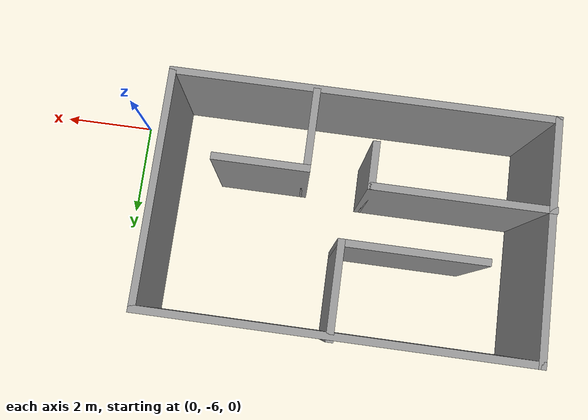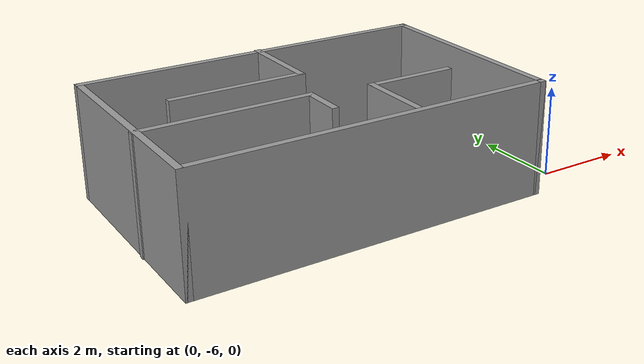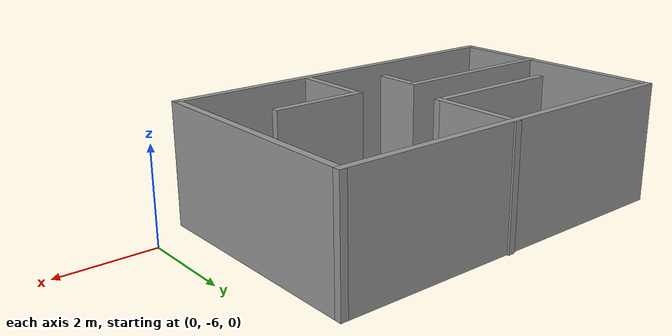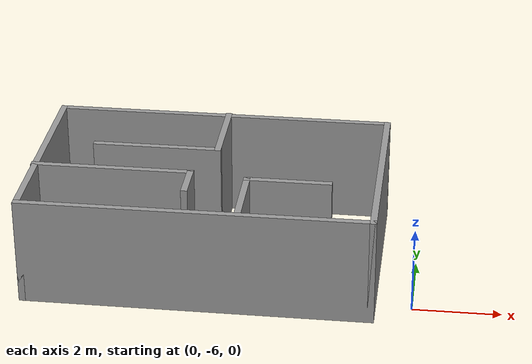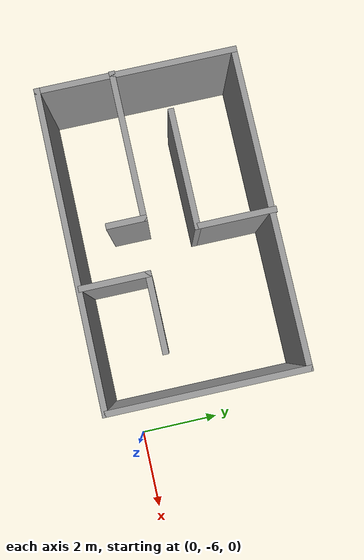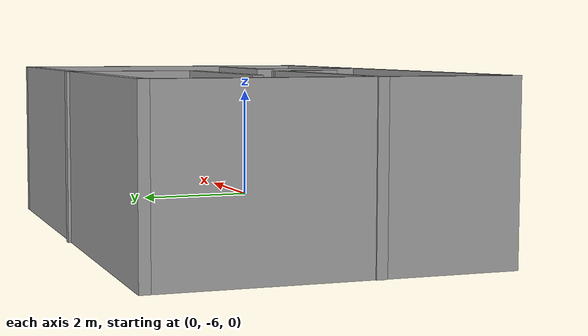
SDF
<?xml version='1.0'?>
<sdf version='1.7'>
  <model name='room'>
    <pose>-4.41881 -3.33567 0 0 -0 0</pose>
    <link name='Wall_1'>
      <collision name='Wall_1_Collision'>
        <geometry>
          <box>
            <size>8 0.15 2.5</size>
          </box>
        </geometry>
        <pose>0 0 1.25 0 -0 0</pose>
      </collision>
      <visual name='Wall_1_Visual'>
        <pose>0 0 1.25 0 -0 0</pose>
        <geometry>
          <box>
            <size>8 0.15 2.5</size>
          </box>
        </geometry>
        <material>
          <script>
            <uri>file://media/materials/scripts/gazebo.material</uri>
            <name>Gazebo/Grey</name>
          </script>
          <ambient>1 1 1 1</ambient>
        </material>
        <meta>
          <layer>0</layer>
        </meta>
      </visual>
      <pose>-0.394306 1.58933 0 0 -0 3.14159</pose>
    </link>
    <link name='Wall_10'>
      <collision name='Wall_10_Collision'>
        <geometry>
          <box>
            <size>3 0.15 2.5</size>
          </box>
        </geometry>
        <pose>0 0 1.25 0 -0 0</pose>
      </collision>
      <visual name='Wall_10_Visual'>
        <pose>0 0 1.25 0 -0 0</pose>
        <geometry>
          <box>
            <size>3 0.15 2.5</size>
          </box>
        </geometry>
        <material>
          <script>
            <uri>file://media/materials/scripts/gazebo.material</uri>
            <name>Gazebo/Grey</name>
          </script>
          <ambient>1 1 1 1</ambient>
        </material>
        <meta>
          <layer>0</layer>
        </meta>
      </visual>
      <pose>-1.71111 -0.218394 0 0 -0 3.14159</pose>
    </link>
    <link name='Wall_15'>
      <collision name='Wall_15_Collision'>
        <geometry>
          <box>
            <size>1.75 0.15 2.5</size>
          </box>
        </geometry>
        <pose>0 0 1.25 0 -0 0</pose>
      </collision>
      <visual name='Wall_15_Visual'>
        <pose>0 0 1.25 0 -0 0</pose>
        <geometry>
          <box>
            <size>1.75 0.15 2.5</size>
          </box>
        </geometry>
        <material>
          <script>
            <uri>file://media/materials/scripts/gazebo.material</uri>
            <name>Gazebo/Grey</name>
          </script>
          <ambient>1 1 1 1</ambient>
        </material>
        <meta>
          <layer>0</layer>
        </meta>
      </visual>
      <pose>0.5709 -2.39565 0 0 -0 1.5708</pose>
    </link>
    <link name='Wall_16'>
      <collision name='Wall_16_Collision'>
        <geometry>
          <box>
            <size>2 0.15 2.5</size>
          </box>
        </geometry>
        <pose>0 0 1.25 0 -0 0</pose>
      </collision>
      <visual name='Wall_16_Visual'>
        <pose>0 0 1.25 0 -0 0</pose>
        <geometry>
          <box>
            <size>2 0.15 2.5</size>
          </box>
        </geometry>
        <material>
          <script>
            <uri>file://media/materials/scripts/gazebo.material</uri>
            <name>Gazebo/Grey</name>
          </script>
          <ambient>1 1 1 1</ambient>
        </material>
        <meta>
          <layer>0</layer>
        </meta>
      </visual>
      <pose>1.4959 -1.59565 0 0 -0 0</pose>
    </link>
    <link name='Wall_2'>
      <collision name='Wall_2_Collision'>
        <geometry>
          <box>
            <size>5 0.15 2.5</size>
          </box>
        </geometry>
        <pose>0 0 1.25 0 -0 0</pose>
      </collision>
      <visual name='Wall_2_Visual'>
        <pose>0 0 1.25 0 -0 0</pose>
        <geometry>
          <box>
            <size>5 0.15 2.5</size>
          </box>
        </geometry>
        <material>
          <script>
            <uri>file://media/materials/scripts/gazebo.material</uri>
            <name>Gazebo/Grey</name>
          </script>
          <ambient>1 1 1 1</ambient>
        </material>
        <meta>
          <layer>0</layer>
        </meta>
      </visual>
      <pose>-4.31931 -0.835669 0 0 -0 -1.5708</pose>
    </link>
    <link name='Wall_21'>
      <collision name='Wall_21_Collision'>
        <geometry>
          <box>
            <size>3.75 0.15 2.5</size>
          </box>
        </geometry>
        <pose>0 0 1.25 0 -0 0</pose>
      </collision>
      <visual name='Wall_21_Visual'>
        <pose>0 0 1.25 0 -0 0</pose>
        <geometry>
          <box>
            <size>3.75 0.15 2.5</size>
          </box>
        </geometry>
        <material>
          <script>
            <uri>file://media/materials/scripts/gazebo.material</uri>
            <name>Gazebo/Grey</name>
          </script>
          <ambient>1 1 1 1</ambient>
        </material>
        <meta>
          <layer>0</layer>
        </meta>
      </visual>
      <pose>-2.54381 -1.41166 0 0 -0 0</pose>
    </link>
    <link name='Wall_22'>
      <collision name='Wall_22_Collision'>
        <geometry>
          <box>
            <size>1 0.15 2.5</size>
          </box>
        </geometry>
        <pose>0 0 1.25 0 -0 0</pose>
      </collision>
      <visual name='Wall_22_Visual'>
        <pose>0 0 1.25 0 -0 0</pose>
        <geometry>
          <box>
            <size>1 0.15 2.5</size>
          </box>
        </geometry>
        <material>
          <script>
            <uri>file://media/materials/scripts/gazebo.material</uri>
            <name>Gazebo/Grey</name>
          </script>
          <ambient>1 1 1 1</ambient>
        </material>
        <meta>
          <layer>0</layer>
        </meta>
      </visual>
      <pose>-0.743807 -1.83666 0 0 -0 -1.5708</pose>
    </link>
    <link name='Wall_5'>
      <collision name='Wall_5_Collision'>
        <geometry>
          <box>
            <size>8 0.15 2.5</size>
          </box>
        </geometry>
        <pose>0 0 1.25 0 -0 0</pose>
      </collision>
      <visual name='Wall_5_Visual'>
        <pose>0 0 1.25 0 -0 0</pose>
        <geometry>
          <box>
            <size>8 0.15 2.5</size>
          </box>
        </geometry>
        <material>
          <script>
            <uri>file://media/materials/scripts/gazebo.material</uri>
            <name>Gazebo/Grey</name>
          </script>
          <ambient>1 1 1 1</ambient>
        </material>
        <meta>
          <layer>0</layer>
        </meta>
      </visual>
      <pose>-0.394306 -3.26067 0 0 -0 0</pose>
    </link>
    <link name='Wall_6'>
      <collision name='Wall_6_Collision'>
        <geometry>
          <box>
            <size>5 0.15 2.5</size>
          </box>
        </geometry>
        <pose>0 0 1.25 0 -0 0</pose>
      </collision>
      <visual name='Wall_6_Visual'>
        <pose>0 0 1.25 0 -0 0</pose>
        <geometry>
          <box>
            <size>5 0.15 2.5</size>
          </box>
        </geometry>
        <material>
          <script>
            <uri>file://media/materials/scripts/gazebo.material</uri>
            <name>Gazebo/Grey</name>
          </script>
          <ambient>1 1 1 1</ambient>
        </material>
        <meta>
          <layer>0</layer>
        </meta>
      </visual>
      <pose>3.53069 -0.835669 0 0 -0 1.5708</pose>
    </link>
    <link name='Wall_9'>
      <collision name='Wall_9_Collision'>
        <geometry>
          <box>
            <size>2 0.15 2.5</size>
          </box>
        </geometry>
        <pose>0 0 1.25 0 -0 0</pose>
      </collision>
      <visual name='Wall_9_Visual'>
        <pose>0 0 1.25 0 -0 0</pose>
        <geometry>
          <box>
            <size>2 0.15 2.5</size>
          </box>
        </geometry>
        <material>
          <script>
            <uri>file://media/materials/scripts/gazebo.material</uri>
            <name>Gazebo/Grey</name>
          </script>
          <ambient>1 1 1 1</ambient>
        </material>
        <meta>
          <layer>0</layer>
        </meta>
      </visual>
      <pose>-0.286113 0.706606 0 0 -0 -1.5708</pose>
    </link>
    <static>1</static>
  </model>
</sdf>
